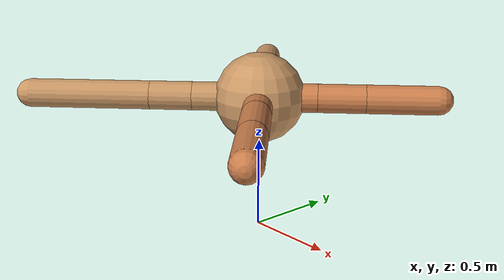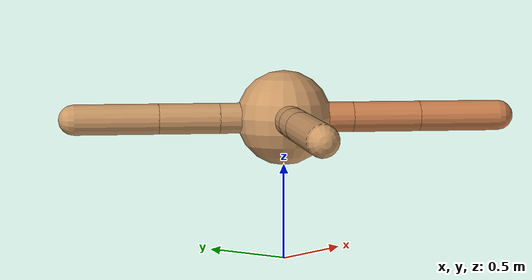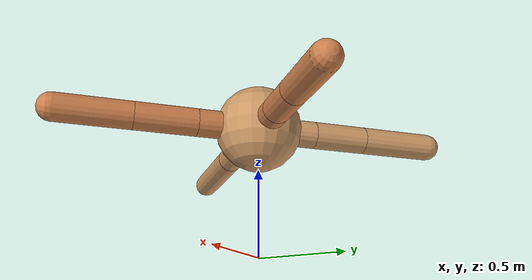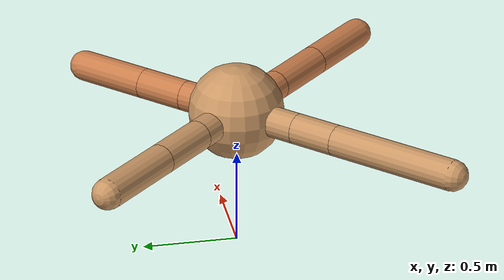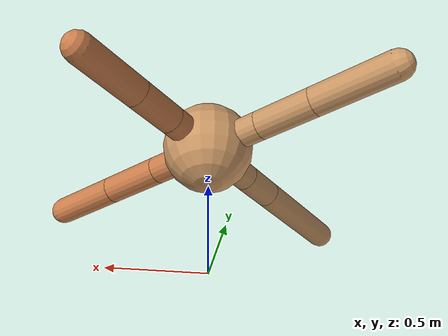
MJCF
<mujoco model="ant">
  <compiler angle="degree" coordinate="local" inertiafromgeom="true" />
  <option integrator="RK4" timestep="0.01" />
  <custom>
    <numeric data="0.0 0.0 0.55 1.0 0.0 0.0 0.0 0.0 1.0 0.0 -1.0 0.0 -1.0 0.0 1.0" name="init_qpos" />
  </custom>
  <default>
    <joint armature="1" damping="1" limited="true" />
    <geom conaffinity="0" condim="3" density="5.0" friction="1.5 0.1 0.1" margin="0.01" rgba="0.8 0.6 0.4 1" />
  </default>
  <worldbody>
    <body name="torso" pos="0 0 0.75">
      <geom name="torso_geom" pos="0 0 0" size="0.25" type="sphere" />

      <body name="front_left_leg" pos="0 0 0">
        <geom fromto="0.0 0.0 0.0 0.22522965564670452 0.22522965564670452 0.0" name="aux_1_geom" size="0.08" type="capsule" rgba=".8 .5 .3 1" />
        <body name="aux_1" pos="0.22522965564670452 0.22522965564670452 0.0">
          <joint axis="0 0 1" name="hip_1" pos="0.0 0.0 0.0" range="-40 40" type="hinge" />
          <geom fromto="0.0 0.0 0.0 0.18611088368940698 0.18611088368940698 0.0" name="left_leg_geom" size="0.08" type="capsule" rgba=".8 .5 .3 1" />
          <body pos="0.18611088368940698 0.18611088368940698 0.0" name="front_left_foot">
            <joint axis="-1 1 0" name="ankle_1" pos="0.0 0.0 0.0" range="30 100" type="hinge" />
            <geom fromto="0.0 0.0 0.0 0.27913438609902264 0.27913438609902264 0.0" name="left_ankle_geom" size="0.08" type="capsule" rgba=".8 .5 .3 1" />
          </body>
        </body>
      </body>
      <body name="front_right_leg" pos="0 0 0">
        <geom fromto="0.0 0.0 0.0 -0.2420985416599618 0.2420985416599618 0.0" name="aux_2_geom" size="0.08" type="capsule" />
        <body name="aux_2" pos="-0.2420985416599618 0.2420985416599618 0.0">
          <joint axis="0 0 1" name="hip_2" pos="0.0 0.0 0.0" range="-40 40" type="hinge" />
          <geom fromto="0.0 0.0 0.0 -0.2261164087000469 0.2261164087000469 0.0" name="right_leg_geom" size="0.08" type="capsule" />
          <body pos="-0.2261164087000469 0.2261164087000469 0.0" name="front_right_foot">
            <joint axis="1 1 0" name="ankle_2" pos="0.0 0.0 0.0" range="-100 -30" type="hinge" />
            <geom fromto="0.0 0.0 0.0 -0.3120497403856165 0.3120497403856165 0.0" name="right_ankle_geom" size="0.08" type="capsule" />
          </body>
        </body>
      </body>
      <body name="left_back_leg" pos="0 0 0">
        <geom fromto="0.0 0.0 0.0 -0.26392403201589776 -0.26392403201589776 0.0" name="aux_3_geom" size="0.08" type="capsule" />
        <body name="aux_3" pos="-0.26392403201589776 -0.26392403201589776 0.0">
          <joint axis="0 0 1" name="hip_3" pos="0.0 0.0 0.0" range="-40 40" type="hinge" />
          <geom fromto="0.0 0.0 0.0 -0.16772309814748998 -0.16772309814748998 0.0" name="back_leg_geom" size="0.08" type="capsule" />
          <body pos="-0.16772309814748998 -0.16772309814748998 0.0" name="left_back_foot">
            <joint axis="-1 1 0" name="ankle_3" pos="0.0 0.0 0.0" range="-100 -30" type="hinge" />
            <geom fromto="0.0 0.0 0.0 -0.48000430547038353 -0.48000430547038353 0.0" name="third_ankle_geom" size="0.08" type="capsule" />
          </body>
        </body>
      </body>
      <body name="right_back_leg" pos="0 0 0">
        <geom fromto="0.0 0.0 0.0 0.2586742090663462 -0.2586742090663462 0.0" name="aux_4_geom" size="0.08" type="capsule" rgba=".8 .5 .3 1" />
        <body name="aux_4" pos="0.2586742090663462 -0.2586742090663462 0.0">
          <joint axis="0 0 1" name="hip_4" pos="0.0 0.0 0.0" range="-40 40" type="hinge" />
          <geom fromto="0.0 0.0 0.0 0.2537707675595815 -0.2537707675595815 0.0" name="rightback_leg_geom" size="0.08" type="capsule" rgba=".8 .5 .3 1" />
          <body pos="0.2537707675595815 -0.2537707675595815 0.0" name="right_back_foot">
            <joint axis="1 1 0" name="ankle_4" pos="0.0 0.0 0.0" range="30 100" type="hinge" />
            <geom fromto="0.0 0.0 0.0 0.304299420289366 -0.304299420289366 0.0" name="fourth_ankle_geom" size="0.08" type="capsule" rgba=".8 .5 .3 1" />
          </body>
        </body>
      </body>
    </body>
  </worldbody>
  <actuator>
    <motor ctrllimited="true" ctrlrange="-1.0 1.0" joint="hip_4" gear="150" />
    <motor ctrllimited="true" ctrlrange="-1.0 1.0" joint="ankle_4" gear="150" />
    <motor ctrllimited="true" ctrlrange="-1.0 1.0" joint="hip_1" gear="150" />
    <motor ctrllimited="true" ctrlrange="-1.0 1.0" joint="ankle_1" gear="150" />
    <motor ctrllimited="true" ctrlrange="-1.0 1.0" joint="hip_2" gear="150" />
    <motor ctrllimited="true" ctrlrange="-1.0 1.0" joint="ankle_2" gear="150" />
    <motor ctrllimited="true" ctrlrange="-1.0 1.0" joint="hip_3" gear="150" />
    <motor ctrllimited="true" ctrlrange="-1.0 1.0" joint="ankle_3" gear="150" />
  </actuator>
</mujoco>
